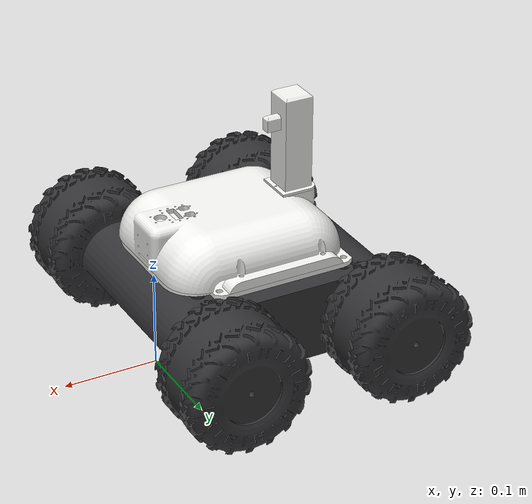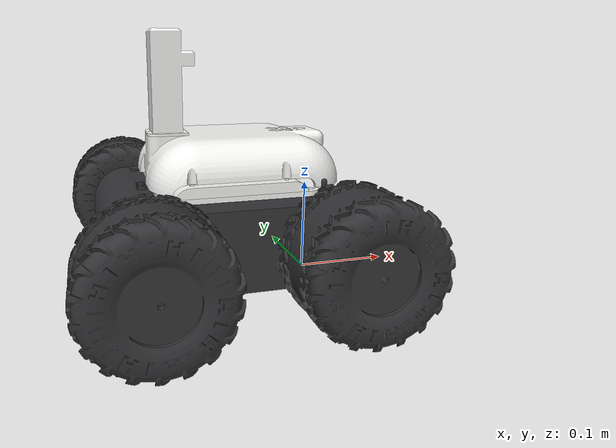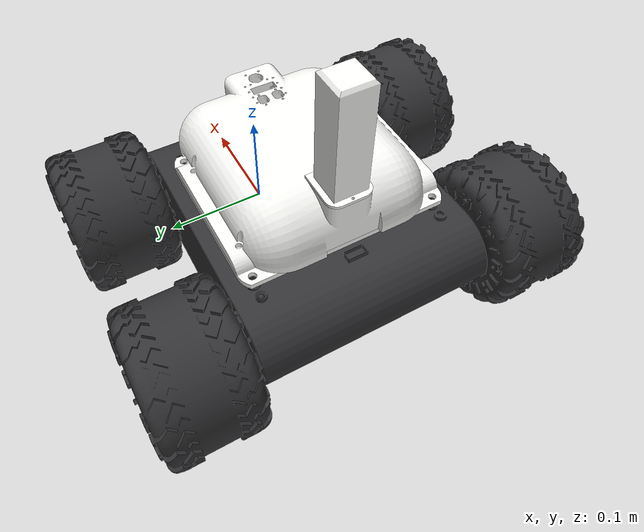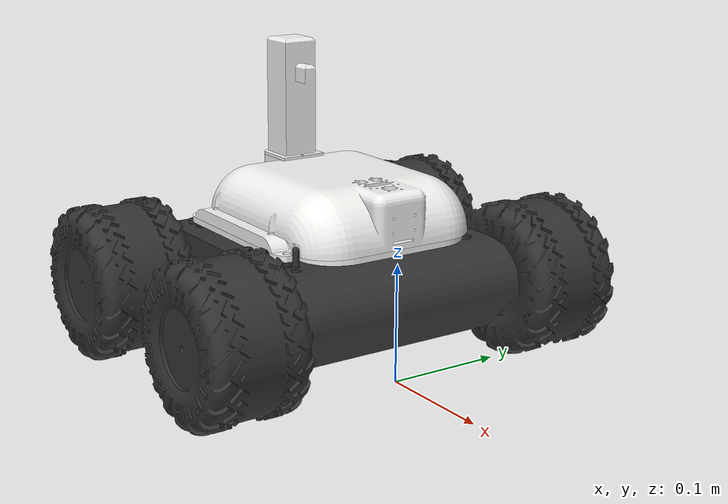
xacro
<?xml version="1.0" ?>
<robot name="Wifibot" xmlns:xacro="http://www.ros.org/wiki/xacro">

<xacro:include filename="$(find Wifibot_description)/urdf/materials.xacro" />
<xacro:include filename="$(find Wifibot_description)/urdf/Wifibot.trans" />
<xacro:include filename="$(find Wifibot_description)/urdf/Wifibot.gazebo" />

<link name="base_link">
</link>

<joint name="chassis_joint" type="fixed">
  <parent link="base_link"/>
  <child link="chassis_link"/>
  <origin xyz="-0.1 0 0"  rpy="0 0 0"/>
</joint>
<link name="chassis_link">
  <inertial>
    <origin xyz="0.0008538308347129231 -0.00188802983375572 0.06669854261691827" rpy="0 0 0"/>
    <mass value="30.263664321753744"/>
    <inertia ixx="0.124124" iyy="0.154149" izz="0.248504" ixy="-2e-05" iyz="-3e-06" ixz="-2.4e-05"/>
  </inertial>
  <visual>
    <origin xyz="0 0 0" rpy="0 0 0"/>
    <geometry>
      <mesh filename="package://Wifibot_description/meshes/base_link.stl" scale="0.01 0.01 0.01"/>
    </geometry>
    <material name="gray"/>
  </visual>
  <collision>
    <origin xyz="0 0 0" rpy="0 0 0"/>
    <geometry>
      <mesh filename="package://Wifibot_description/meshes/base_link.stl" scale="0.01 0.01 0.01"/>
    </geometry>
  </collision>
</link>

<link name="front_left_wheel_1">
  <inertial>
    <origin xyz="-1.7301418626936016e-07 0.046226741977504066 2.256949969164923e-06" rpy="0 0 0"/>
    <mass value="1.1710647510299943"/>
    <inertia ixx="0.002726" iyy="0.003208" izz="0.002726" ixy="0.0" iyz="0.0" ixz="-0.0"/>
  </inertial>
  <visual>
    <origin xyz="-0.090837 -0.102108 -0.06551" rpy="0 0 0"/>
    <geometry>
      <mesh filename="package://Wifibot_description/meshes/front_left_wheel_1.stl" scale="0.01 0.01 0.01"/>
    </geometry>
    <material name="gray"/>
  </visual>
  <collision>
    <origin xyz="-0.090837 -0.102108 -0.06551" rpy="0 0 0"/>
    <geometry>
      <mesh filename="package://Wifibot_description/meshes/front_left_wheel_1.stl" scale="0.01 0.01 0.01"/>
    </geometry>
  </collision>
</link>

<link name="front_right_wheel_1">
  <inertial>
    <origin xyz="-2.0148622627280677e-07 -0.0462270174481091 2.2569499691510453e-06" rpy="0 0 0"/>
    <mass value="1.1710647510299943"/>
    <inertia ixx="0.002726" iyy="0.003208" izz="0.002726" ixy="0.0" iyz="-0.0" ixz="0.0"/>
  </inertial>
  <visual>
    <origin xyz="-0.090837 0.105892 -0.06551" rpy="0 0 0"/>
    <geometry>
      <mesh filename="package://Wifibot_description/meshes/front_right_wheel_1.stl" scale="0.01 0.01 0.01"/>
    </geometry>
    <material name="gray"/>
  </visual>
  <collision>
    <origin xyz="-0.090837 0.105892 -0.06551" rpy="0 0 0"/>
    <geometry>
      <mesh filename="package://Wifibot_description/meshes/front_right_wheel_1.stl" scale="0.01 0.01 0.01"/>
    </geometry>
  </collision>
</link>

<link name="rear_left_wheel_1">
  <inertial>
    <origin xyz="-1.7301418654691592e-07 0.04622674197750512 2.25694996924819e-06" rpy="0 0 0"/>
    <mass value="1.1710647510299943"/>
    <inertia ixx="0.002726" iyy="0.003208" izz="0.002726" ixy="0.0" iyz="0.0" ixz="-0.0"/>
  </inertial>
  <visual>
    <origin xyz="0.089163 -0.102108 -0.06551" rpy="0 0 0"/>
    <geometry>
      <mesh filename="package://Wifibot_description/meshes/rear_left_wheel_1.stl" scale="0.01 0.01 0.01"/>
    </geometry>
    <material name="gray"/>
  </visual>
  <collision>
    <origin xyz="0.089163 -0.102108 -0.06551" rpy="0 0 0"/>
    <geometry>
      <mesh filename="package://Wifibot_description/meshes/rear_left_wheel_1.stl" scale="0.01 0.01 0.01"/>
    </geometry>
  </collision>
</link>

<link name="rear_right_wheel_1">
  <inertial>
    <origin xyz="-2.0148622641158465e-07 -0.04622701681332976 2.2569499692204342e-06" rpy="0 0 0"/>
    <mass value="1.1710647510299943"/>
    <inertia ixx="0.002726" iyy="0.003208" izz="0.002726" ixy="0.0" iyz="-0.0" ixz="0.0"/>
  </inertial>
  <visual>
    <origin xyz="0.089163 0.105892 -0.06551" rpy="0 0 0"/>
    <geometry>
      <mesh filename="package://Wifibot_description/meshes/rear_right_wheel_1.stl" scale="0.01 0.01 0.01"/>
    </geometry>
    <material name="gray"/>
  </visual>
  <collision>
    <origin xyz="0.089163 0.105892 -0.06551" rpy="0 0 0"/>
    <geometry>
      <mesh filename="package://Wifibot_description/meshes/rear_right_wheel_1.stl" scale="0.01 0.01 0.01"/>
    </geometry>
  </collision>
</link>

<link name="support_v1_1">
  <inertial>
    <origin xyz="-0.2017991285587109 -0.17452200920541733 -0.023010000000000128" rpy="0 0 0"/>
    <mass value="1.2598198733152801"/>
    <inertia ixx="0.003357" iyy="0.003352" izz="0.006704" ixy="1.2e-05" iyz="0.0" ixz="-0.0"/>
  </inertial>
  <visual>
    <origin xyz="-0.215729 -0.171945 -0.13662" rpy="0 0 0"/>
    <geometry>
      <mesh filename="package://Wifibot_description/meshes/support_v1_1.stl" scale="0.01 0.01 0.01"/>
    </geometry>
    <material name="white"/>
  </visual>
  <collision>
    <origin xyz="-0.215729 -0.171945 -0.13662" rpy="0 0 0"/>
    <geometry>
      <mesh filename="package://Wifibot_description/meshes/support_v1_1.stl" scale="0.01 0.01 0.01"/>
    </geometry>
  </collision>
</link>

<link name="capot_v1_1">
  <inertial>
    <origin xyz="0.014910124960665993 0.09303956377418005 0.028422321571636835" rpy="0 0 0"/>
    <mass value="1.8514525863187674"/>
    <inertia ixx="0.005929" iyy="0.006616" izz="0.011811" ixy="-5e-06" iyz="2e-06" ixz="-1.5e-05"/>
  </inertial>
  <visual>
    <origin xyz="-0.000837 0.094892 -0.11611" rpy="0 0 0"/>
    <geometry>
      <mesh filename="package://Wifibot_description/meshes/capot_v1_1.stl" scale="0.01 0.01 0.01"/>
    </geometry>
    <material name="white"/>
  </visual>
  <collision>
    <origin xyz="-0.000837 0.094892 -0.11611" rpy="0 0 0"/>
    <geometry>
      <mesh filename="package://Wifibot_description/meshes/capot_v1_1.stl" scale="0.01 0.01 0.01"/>
    </geometry>
  </collision>
</link>

<link name="support_camera_v1_1">
  <inertial>
    <origin xyz="0.018121000409102618 2.064957086522854e-07 0.05131900678806825" rpy="0 0 0"/>
    <mass value="0.25111231247455446"/>
    <inertia ixx="0.000285" iyy="0.000289" izz="6.7e-05" ixy="0.0" iyz="0.0" ixz="-4e-06"/>
  </inertial>
  <visual>
    <origin xyz="0.072328 0.001896 -0.16111" rpy="0 0 0"/>
    <geometry>
      <mesh filename="package://Wifibot_description/meshes/support_camera_v1_1.stl" scale="0.01 0.01 0.01"/>
    </geometry>
    <material name="white"/>
  </visual>
  <collision>
    <origin xyz="0.072328 0.001896 -0.16111" rpy="0 0 0"/>
    <geometry>
      <mesh filename="package://Wifibot_description/meshes/support_camera_v1_1.stl" scale="0.01 0.01 0.01"/>
    </geometry>
  </collision>
</link>

<joint name="front_left_wheel_joint" type="continuous">
  <origin xyz="0.090837 0.102108 0.06551" rpy="0 0 0"/>
  <parent link="chassis_link"/>
  <child link="front_left_wheel_1"/>
  <axis xyz="0.0 1.0 0.0"/>
</joint>

<joint name="front_right_wheel_joint" type="continuous">
  <origin xyz="0.090837 -0.105892 0.06551" rpy="0 0 0"/>
  <parent link="chassis_link"/>
  <child link="front_right_wheel_1"/>
  <axis xyz="0.0 1.0 0.0"/>
</joint>

<joint name="rear_left_wheel_joint" type="continuous">
  <origin xyz="-0.089163 0.102108 0.06551" rpy="0 0 0"/>
  <parent link="chassis_link"/>
  <child link="rear_left_wheel_1"/>
  <axis xyz="0.0 1.0 0.0"/>
</joint>

<joint name="rear_right_wheel_joint" type="continuous">
  <origin xyz="-0.089163 -0.105892 0.06551" rpy="0 0 0"/>
  <parent link="chassis_link"/>
  <child link="rear_right_wheel_1"/>
  <axis xyz="-0.0 -1.0 -0.0"/>
</joint>

<joint name="Rigide 22" type="fixed">
  <origin xyz="0.215729 0.171945 0.13662" rpy="0 0 0"/>
  <parent link="chassis_link"/>
  <child link="support_v1_1"/>
</joint>

<joint name="Rigide 23" type="fixed">
  <origin xyz="-0.214892 -0.266837 -0.02051" rpy="0 0 0"/>
  <parent link="support_v1_1"/>
  <child link="capot_v1_1"/>
</joint>

<joint name="Rigide 24" type="fixed">
  <origin xyz="-0.073165 0.092996 0.045" rpy="0 0 0"/>
  <parent link="capot_v1_1"/>
  <child link="support_camera_v1_1"/>
</joint>

</robot>

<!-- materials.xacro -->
<robot name="Wifibot" xmlns:xacro="http://www.ros.org/wiki/xacro" >

<material name="silver">
  <color rgba="0.700 0.700 0.700 1.000"/>
</material>

<material name="white">
  <color rgba="0.96 0.96 0.95 1.000"/>
</material>
 <material name="black">
    <color rgba="0.08 0.08 0.08 1.0"/>
  </material>
  <material name="gray">
    <color rgba="0.2 0.2 0.21 1.0"/>
  </material>
</robot>

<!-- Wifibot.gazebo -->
<robot name="Wifibot" xmlns:xacro="http://www.ros.org/wiki/xacro" >

<xacro:property name="body_color" value="Gazebo/Silver" />
<xacro:property name="wheel_color" value="Gazebo/Grey" />
<xacro:property name="chassis_color" value="Gazebo/DarkGrey" />

<gazebo>
  <plugin name="control" filename="libgazebo_ros_control.so"/>
</gazebo>
<gazebo reference="chassis_link">
  <material>${chassis_color}</material>
  <mu1>0.2</mu1>
  <mu2>0.2</mu2>
  <selfCollide>true</selfCollide>
  <gravity>true</gravity>
</gazebo>

<gazebo reference="front_left_wheel_1">
  <material>${wheel_color}</material>
  <mu1>0.2</mu1>
  <mu2>0.2</mu2>
  <selfCollide>true</selfCollide>
</gazebo>

<gazebo reference="front_right_wheel_1">
  <material>${wheel_color}</material>
  <mu1>0.2</mu1>
  <mu2>0.2</mu2>
  <selfCollide>true</selfCollide>
</gazebo>

<gazebo reference="rear_left_wheel_1">
  <material>${wheel_color}</material>
  <mu1>0.2</mu1>
  <mu2>0.2</mu2>
  <selfCollide>true</selfCollide>
</gazebo>

<gazebo reference="rear_right_wheel_1">
  <material>${wheel_color}</material>
  <mu1>0.2</mu1>
  <mu2>0.2</mu2>
  <selfCollide>true</selfCollide>
</gazebo>

<gazebo reference="support_v1_1">
  <material>${body_color}</material>
  <mu1>0.2</mu1>
  <mu2>0.2</mu2>
  <selfCollide>true</selfCollide>
</gazebo>

<gazebo reference="capot_v1_1">
  <material>${body_color}</material>
  <mu1>0.2</mu1>
  <mu2>0.2</mu2>
  <selfCollide>true</selfCollide>
</gazebo>

<gazebo reference="support_camera_v1_1">
  <material>${body_color}</material>
  <mu1>0.2</mu1>
  <mu2>0.2</mu2>
  <selfCollide>true</selfCollide>
</gazebo>
<gazebo>
  <plugin name="skid_steer_drive_controller" filename="libgazebo_ros_skid_steer_drive.so">
    <updateRate>100.0</updateRate>
    <robotNamespace>/</robotNamespace>
    <leftFrontJoint>front_left_wheel_joint</leftFrontJoint>
    <rightFrontJoint>front_right_wheel_joint</rightFrontJoint>
    <leftRearJoint>rear_left_wheel_joint</leftRearJoint>
    <rightRearJoint>rear_right_wheel_joint</rightRearJoint>
    <wheelSeparation>0.21881</wheelSeparation>
    <wheelDiameter>0.131</wheelDiameter>
    <robotBaseFrame>chassis_link</robotBaseFrame>
    <torque>20</torque>
    <topicName>cmd_vel</topicName>
    <commandTopic>cmd_vel</commandTopic>
    <broadcastTF>false</broadcastTF>
  </plugin>
</gazebo>
</robot>
